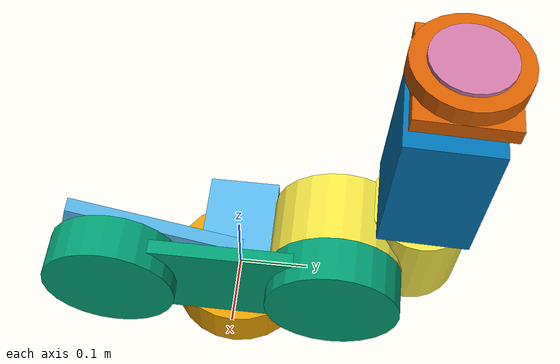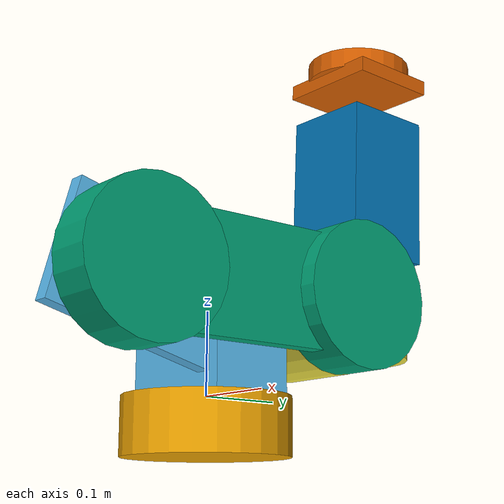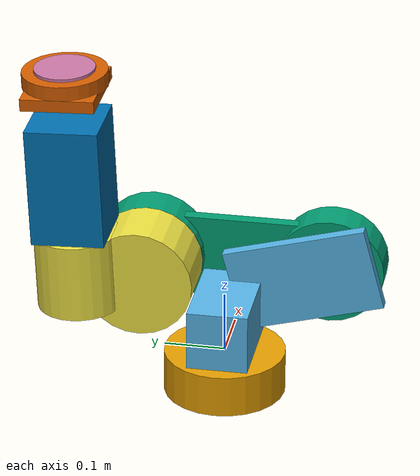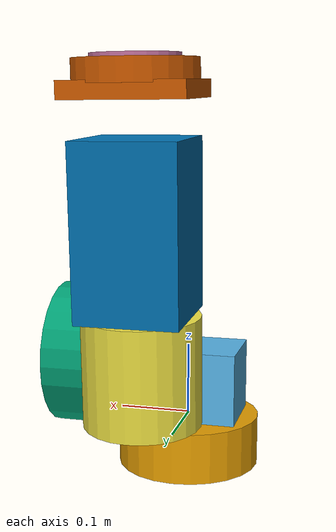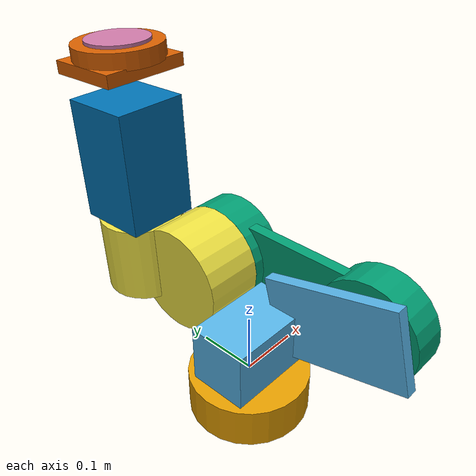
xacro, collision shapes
<?xml version="1.0"?>
<robot xmlns:xacro="http://www.ros.org/wiki/xacro" name="six_dof_arm">
    <xacro:arg name="initial_positions_file" default="initial_positions.yaml" />

    <!-- Import six_dof_arm urdf file -->
    <xacro:include filename="$(find six_dof_arm_description)/urdf/six_dof_arm.urdf" />

    <!-- Import control_xacro -->
    <xacro:include filename="six_dof_arm.ros2_control.xacro" />

    <xacro:six_dof_arm_ros2_control name="FakeSystem" initial_positions_file="$(arg initial_positions_file)"/>

</robot>

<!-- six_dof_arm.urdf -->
<robot name="six_dof_arm">
	<link name="base_link">
		<visual>
			<origin xyz="0 0 0" rpy="0 0 0"/>
			<geometry>
				<mesh filename="package://six_dof_arm_description/meshes/base_link.dae"/>
			</geometry>
		</visual>
		<collision>
			<origin xyz="0 0 -0.035" rpy="0 0 0"/>
			<geometry>
				<cylinder radius="0.1" length="0.07"/>
			</geometry>
		</collision>
	</link>

	<link name="k0">
		<visual>
			<origin xyz="0 0 0" rpy="0 0 0"/>
			<geometry>
				<mesh filename="package://six_dof_arm_description/meshes/link01.dae"/>
			</geometry>
		</visual>
		<collision>
			<origin xyz="0.005 0.0 0.05" rpy="0.0 0.0 0.0"/>
			<geometry>
				<box size="0.16 0.10 0.1"/>
			</geometry>
		</collision>
		<collision>
			<origin xyz="0.06 -0.12 0.11" rpy="-0.261799388 0.0 0.0"/>
			<geometry>
				<box size="0.02 0.24 0.14"/>
			</geometry>
		</collision>
	</link>

	<link name="k1">
		<visual>
			<origin xyz="0 0 0" rpy="1.570796 0 -1.570796"/>
			<geometry>
				<mesh filename="package://six_dof_arm_description/meshes/link02.dae"/>
			</geometry>
		</visual>
		<collision>
			<origin xyz="0.008 0.15 0.0" rpy="0.0 0.0 0.0"/>
			<geometry>
				<box size="0.02 0.3 0.14"/>
			</geometry>
		</collision>
		<collision>
			<origin xyz="0.01 0.0 0.0" rpy="0.0 1.570796 0.0"/>
			<geometry>
				<cylinder radius="0.09" length="0.06"/>
			</geometry>
		</collision>
		<collision>
			<origin xyz="0.01 0.3 0.0" rpy="0.0 1.570796 0.0"/>
			<geometry>
				<cylinder radius="0.09" length="0.06"/>
			</geometry>
		</collision>
	</link>

	<link name="k2">
		<visual>
			<origin xyz="0 0 0" rpy="0 -1.570796 0"/>
			<geometry>
				<mesh filename="package://six_dof_arm_description/meshes/link03.dae"/>
			</geometry>
		</visual>
		<collision>
			<origin xyz="-0.070 0.0 0.0" rpy="0.0 1.570796 0.0"/>
			<geometry>
				<cylinder radius="0.09" length="0.10"/>
			</geometry>
		</collision>
		<collision>
			<origin xyz="-0.0925 -0.015 0.1025" rpy="1.570796 0.0 0.0"/>
			<geometry>
				<cylinder radius="0.07" length="0.13"/>
			</geometry>
		</collision>
	</link>

	<link name="k3">
		<visual>
			<origin xyz="0 0 0" rpy="1.570796 0 0"/>
			<geometry>
				<mesh filename="package://six_dof_arm_description/meshes/link04.dae"/>
			</geometry>
		</visual>
		<collision>
			<origin xyz="0.0 -0.10 0.0" rpy="0.0 0.0 0.0"/>
			<geometry>
				<box size="0.12 0.20 0.12"/>
			</geometry>
		</collision>
	</link>

	<link name="k4">
		<visual>
			<origin xyz="0 0 0" rpy="1.570796 0 0"/>
			<geometry>
				<mesh filename="package://six_dof_arm_description/meshes/link05.dae"/>
			</geometry>
		</visual>
		<collision>
			<origin xyz="0.0 -0.070 0.0" rpy="1.570796 0.0 0.0"/>
			<geometry>
				<cylinder radius="0.070" length="0.026"/>
			</geometry>
		</collision>
		<collision>
			<origin xyz="0.0 -0.05 0.0" rpy="0.0 0.0 0.0"/>
			<geometry>
				<box size="0.14 0.02 0.12"/>
			</geometry>
		</collision>
	</link>

	<link name="k5">
		<visual>
			<origin xyz="0 0 0" rpy="1.570796 0 0"/>
			<geometry>
				<mesh filename="package://six_dof_arm_description/meshes/end_effector.dae"/>
			</geometry>
		</visual>
		<collision>
			<origin xyz="0.0 -0.016 0.0" rpy="1.570796 0.0 0.0"/>
			<geometry>
				<cylinder radius="0.05" length="0.02"/>
			</geometry>
		</collision>
	</link>

	<joint name="j0" type="revolute">
		<origin xyz="0.000 0.000 0.000" rpy="0.00 0.00 0.00"/>
		<parent link="base_link"/>
		<child link="k0"/>
		<axis xyz="0 0 1"/>
		<limit lower="-3.14" upper="3.14" effort="80.0" velocity="2.01"/>
	</joint>

	<joint name="j1" type="revolute">
		<origin xyz="0.092 -0.160 0.120" rpy="0.00 0.00 0.00"/>
		<parent link="k0"/>
		<child link="k1"/>
		<axis xyz="1 0 0"/>
		<limit lower="0.0" upper="3.14" effort="50.0" velocity="2.01"/>
	</joint>

	<joint name="j2" type="revolute">
		<origin xyz="0.000 0.300 0.000" rpy="0.00 0.00 0.00"/>
		<parent link="k1"/>
		<child link="k2"/>
		<axis xyz="-1 0 0"/>
		<limit lower="0.0872664626" upper="3.141592" effort="50.0" velocity="2.01"/>
	</joint>

	<joint name="j3" type="revolute">
		<origin xyz="-0.092 -0.080 0.104" rpy="0.00 0.00 0.00"/>
		<parent link="k2"/>
		<child link="k3"/>
		<axis xyz="0 1 0"/>
		<limit lower="-3.14" upper="3.14" effort="30.0" velocity="2.01"/>
	</joint>

	<joint name="j4" type="revolute">
		<origin xyz="0.00 -0.202 0.00" rpy="0.00 0.00 0.00"/>
		<parent link="k3"/>
		<child link="k4"/>
		<axis xyz="1 0 0"/>
		<limit lower="-1.57" upper="1.57" effort="10.0" velocity="2.01"/>
	</joint>

	<joint name="j5" type="revolute">
		<origin xyz="0.00 -0.062 0.00" rpy="0.00 0.00 0.00"/>
		<parent link="k4"/>
		<child link="k5"/>
		<axis xyz="0 1 0"/>
		<limit lower="-3.14" upper="3.14" effort="10.0" velocity="2.01"/>
	</joint>
</robot>
